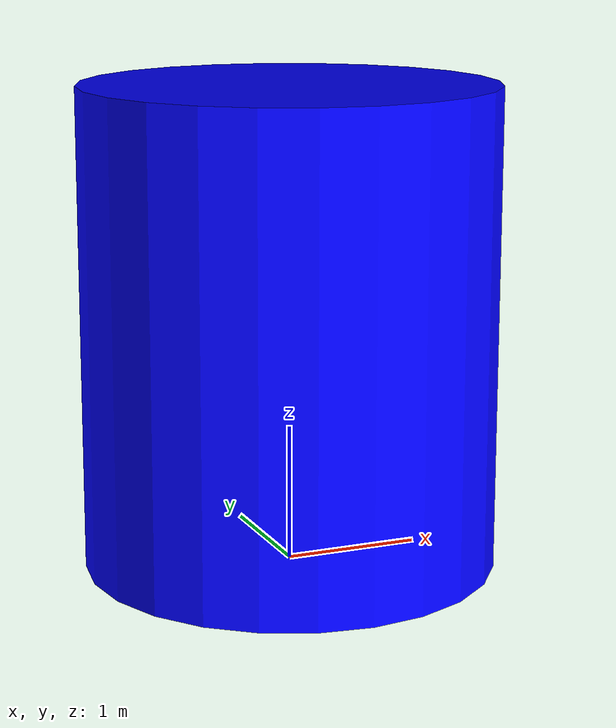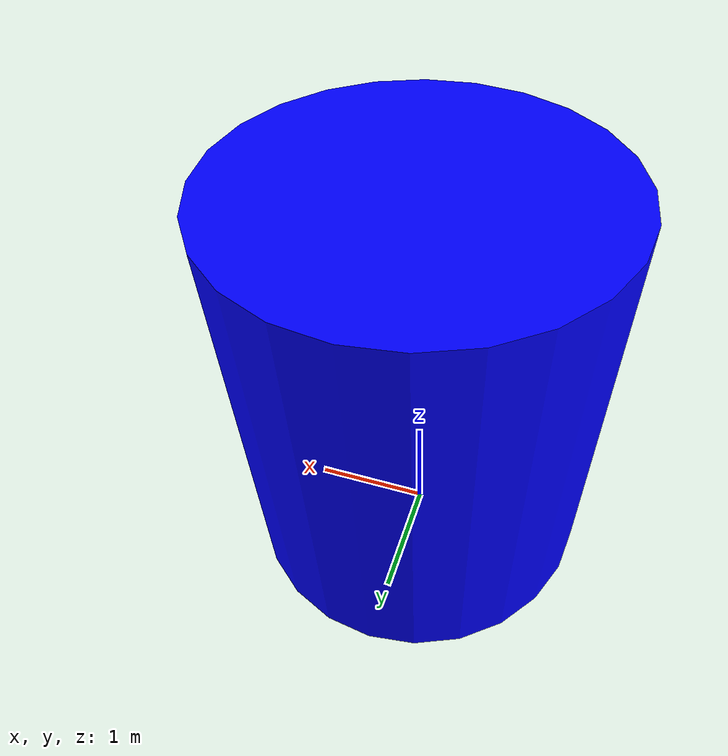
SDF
<?xml version="1.0" ?>
<sdf version="1.5">
  <model name="Big box 2">
    <pose>0 0 1.75  0 0 0</pose>
    <static>false</static>
    <link name="link">
      <inertial>
        <mass>40.0</mass>
        <inertia>
          <ixx>1.5</ixx>
          <ixy>0</ixy>
          <ixz>0</ixz>
          <iyy>1.5</iyy>
          <iyz>0</iyz>
          <izz>1</izz>
        </inertia>
      </inertial>

      <collision name="collision">
        <geometry>
          <cylinder>
            <radius>1.5</radius>
            <length>3.5</length>
          </cylinder>
        </geometry>
	<surface>
          <contact>
            <ode>
              <max_vel>0.1</max_vel>
              <min_depth>0.001</min_depth>
            </ode>
          </contact>
        </surface>
      </collision>
      <visual name="visual">
        <geometry>
        <cylinder>
            <radius>1.5</radius>
            <length>3.5</length>
          </cylinder>
	</geometry>
	<material>
	<ambient>1.0 0.0 0.0 1.0</ambient>
	<diffuse>0.0 0.0 1.0 1.0</diffuse>
	</material>
      </visual>
    </link>
  </model>
</sdf>
